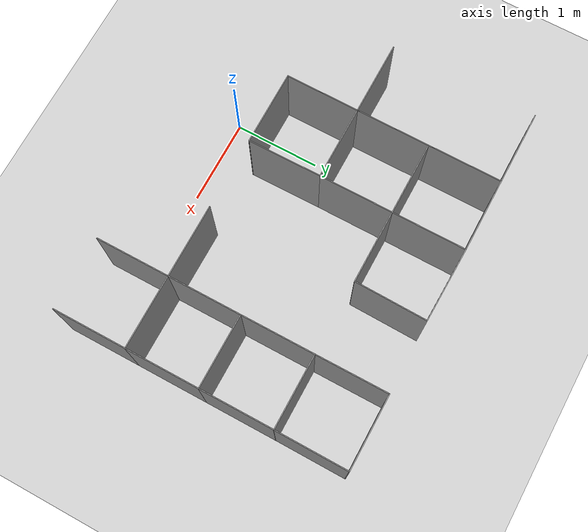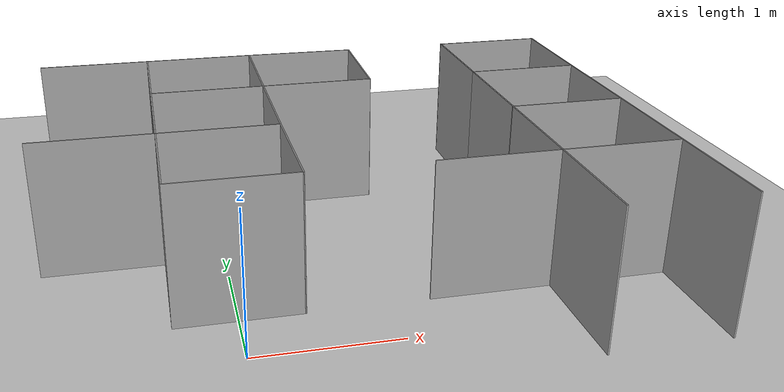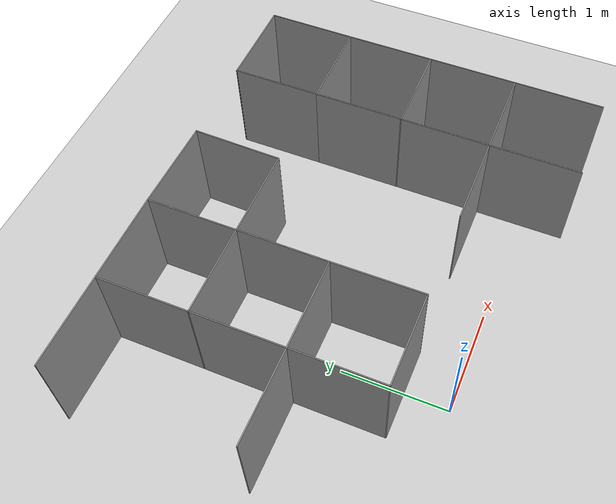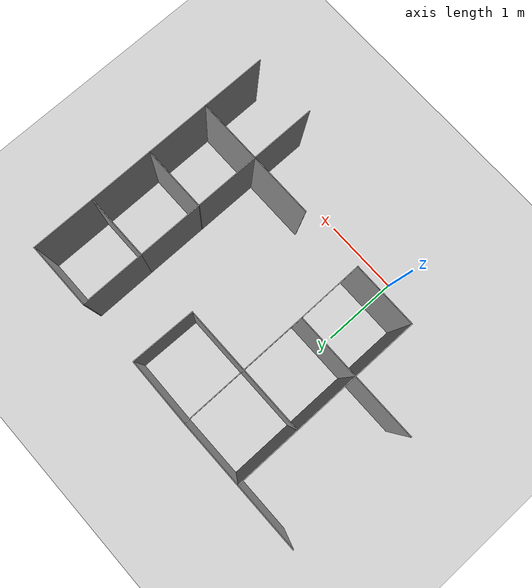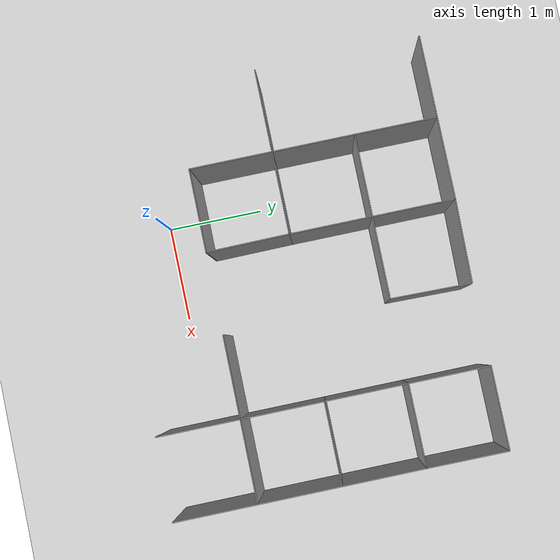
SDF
<sdf version="1.7">
 <world name="default">
  <include><uri>model://sun</uri></include>
  <include><uri>model://ground_plane</uri></include>
  <model name="Lab1">
   <link name="Wall_105">
    <pose>-0.421372 0.849965 0 0 -0 1.5708</pose>
    <visual name="Wall_105_Visual">
     <pose>0 0 0.5 0 -0 0</pose>
     <geometry><box><size>0.859555 0.01 1</size></box></geometry>
     <material>
      <script><uri>file://media/materials/scripts/gazebo.material</uri><name>Gazebo/Grey</name></script>
      <ambient>1 1 1 1</ambient>
      <shader type="pixel"/>
     </material>
     <meta><layer>0</layer></meta>
    </visual>
    <collision name="Wall_105_Collision">
     <pose>0 0 0.5 0 -0 0</pose>
     <geometry><box><size>0.859555 0.01 1</size></box></geometry>
     <surface>
      <friction>
       <ode><mu>1</mu><mu2>1</mu2><fdir1>0 0 0</fdir1><slip1>0</slip1><slip2>0</slip2></ode>
       <torsional>
        <coefficient>1</coefficient>
        <patch_radius>0</patch_radius>
        <surface_radius>0</surface_radius>
        <use_patch_radius>1</use_patch_radius>
        <ode><slip>0</slip></ode>
       </torsional>
      </friction>
      <bounce><restitution_coefficient>0</restitution_coefficient><threshold>1e+06</threshold></bounce>
      <contact>
       <collide_without_contact>0</collide_without_contact>
       <collide_without_contact_bitmask>1</collide_without_contact_bitmask>
       <collide_bitmask>1</collide_bitmask>
       <ode>
        <soft_cfm>0</soft_cfm>
        <soft_erp>0.2</soft_erp>
        <kp>1e+13</kp>
        <kd>1</kd>
        <max_vel>0.01</max_vel>
        <min_depth>0</min_depth>
       </ode>
       <bullet>
        <split_impulse>1</split_impulse>
        <split_impulse_penetration_threshold>-0.01</split_impulse_penetration_threshold>
        <soft_cfm>0</soft_cfm>
        <soft_erp>0.2</soft_erp>
        <kp>1e+13</kp>
        <kd>1</kd>
       </bullet>
      </contact>
     </surface>
    </collision>
   </link>
   <link name="Wall_106">
    <pose>0.003628 1.27496 0 0 -0 0</pose>
    <visual name="Wall_106_Visual">
     <pose>0 0 0.5 0 -0 0</pose>
     <geometry><box><size>0.86 0.01 1</size></box></geometry>
     <material>
      <script><uri>file://media/materials/scripts/gazebo.material</uri><name>Gazebo/Grey</name></script>
      <ambient>1 1 1 1</ambient>
      <shader type="pixel"/>
     </material>
     <meta><layer>0</layer></meta>
    </visual>
    <collision name="Wall_106_Collision">
     <pose>0 0 0.5 0 -0 0</pose>
     <geometry><box><size>0.86 0.01 1</size></box></geometry>
     <surface>
      <friction>
       <ode><mu>1</mu><mu2>1</mu2><fdir1>0 0 0</fdir1><slip1>0</slip1><slip2>0</slip2></ode>
       <torsional>
        <coefficient>1</coefficient>
        <patch_radius>0</patch_radius>
        <surface_radius>0</surface_radius>
        <use_patch_radius>1</use_patch_radius>
        <ode><slip>0</slip></ode>
       </torsional>
      </friction>
      <bounce><restitution_coefficient>0</restitution_coefficient><threshold>1e+06</threshold></bounce>
      <contact>
       <collide_without_contact>0</collide_without_contact>
       <collide_without_contact_bitmask>1</collide_without_contact_bitmask>
       <collide_bitmask>1</collide_bitmask>
       <ode>
        <soft_cfm>0</soft_cfm>
        <soft_erp>0.2</soft_erp>
        <kp>1e+13</kp>
        <kd>1</kd>
        <max_vel>0.01</max_vel>
        <min_depth>0</min_depth>
       </ode>
       <bullet>
        <split_impulse>1</split_impulse>
        <split_impulse_penetration_threshold>-0.01</split_impulse_penetration_threshold>
        <soft_cfm>0</soft_cfm>
        <soft_erp>0.2</soft_erp>
        <kp>1e+13</kp>
        <kd>1</kd>
       </bullet>
      </contact>
     </surface>
    </collision>
   </link>
   <link name="Wall_107">
    <pose>0.432128 0.849965 0 0 0 -1.56256</pose>
    <visual name="Wall_107_Visual">
     <pose>0 0 0.5 0 -0 0</pose>
     <geometry><box><size>0.860029 0.01 1</size></box></geometry>
     <material>
      <script><uri>file://media/materials/scripts/gazebo.material</uri><name>Gazebo/Grey</name></script>
      <ambient>1 1 1 1</ambient>
      <shader type="pixel"/>
     </material>
     <meta><layer>0</layer></meta>
    </visual>
    <collision name="Wall_107_Collision">
     <pose>0 0 0.5 0 -0 0</pose>
     <geometry><box><size>0.860029 0.01 1</size></box></geometry>
     <surface>
      <friction>
       <ode><mu>1</mu><mu2>1</mu2><fdir1>0 0 0</fdir1><slip1>0</slip1><slip2>0</slip2></ode>
       <torsional>
        <coefficient>1</coefficient>
        <patch_radius>0</patch_radius>
        <surface_radius>0</surface_radius>
        <use_patch_radius>1</use_patch_radius>
        <ode><slip>0</slip></ode>
       </torsional>
      </friction>
      <bounce><restitution_coefficient>0</restitution_coefficient><threshold>1e+06</threshold></bounce>
      <contact>
       <collide_without_contact>0</collide_without_contact>
       <collide_without_contact_bitmask>1</collide_without_contact_bitmask>
       <collide_bitmask>1</collide_bitmask>
       <ode>
        <soft_cfm>0</soft_cfm>
        <soft_erp>0.2</soft_erp>
        <kp>1e+13</kp>
        <kd>1</kd>
        <max_vel>0.01</max_vel>
        <min_depth>0</min_depth>
       </ode>
       <bullet>
        <split_impulse>1</split_impulse>
        <split_impulse_penetration_threshold>-0.01</split_impulse_penetration_threshold>
        <soft_cfm>0</soft_cfm>
        <soft_erp>0.2</soft_erp>
        <kp>1e+13</kp>
        <kd>1</kd>
       </bullet>
      </contact>
     </surface>
    </collision>
   </link>
   <link name="Wall_111">
    <pose>2.12863 0.849965 0 0 0 -1.5708</pose>
    <visual name="Wall_111_Visual">
     <pose>0 0 0.5 0 -0 0</pose>
     <geometry><box><size>0.86 0.01 1</size></box></geometry>
     <material>
      <script><uri>file://media/materials/scripts/gazebo.material</uri><name>Gazebo/Grey</name></script>
      <ambient>1 1 1 1</ambient>
      <shader type="pixel"/>
     </material>
     <meta><layer>0</layer></meta>
    </visual>
    <collision name="Wall_111_Collision">
     <pose>0 0 0.5 0 -0 0</pose>
     <geometry><box><size>0.86 0.01 1</size></box></geometry>
     <surface>
      <friction>
       <ode><mu>1</mu><mu2>1</mu2><fdir1>0 0 0</fdir1><slip1>0</slip1><slip2>0</slip2></ode>
       <torsional>
        <coefficient>1</coefficient>
        <patch_radius>0</patch_radius>
        <surface_radius>0</surface_radius>
        <use_patch_radius>1</use_patch_radius>
        <ode><slip>0</slip></ode>
       </torsional>
      </friction>
      <bounce><restitution_coefficient>0</restitution_coefficient><threshold>1e+06</threshold></bounce>
      <contact>
       <collide_without_contact>0</collide_without_contact>
       <collide_without_contact_bitmask>1</collide_without_contact_bitmask>
       <collide_bitmask>1</collide_bitmask>
       <ode>
        <soft_cfm>0</soft_cfm>
        <soft_erp>0.2</soft_erp>
        <kp>1e+13</kp>
        <kd>1</kd>
        <max_vel>0.01</max_vel>
        <min_depth>0</min_depth>
       </ode>
       <bullet>
        <split_impulse>1</split_impulse>
        <split_impulse_penetration_threshold>-0.01</split_impulse_penetration_threshold>
        <soft_cfm>0</soft_cfm>
        <soft_erp>0.2</soft_erp>
        <kp>1e+13</kp>
        <kd>1</kd>
       </bullet>
      </contact>
     </surface>
    </collision>
   </link>
   <link name="Wall_112">
    <pose>2.55363 0.424965 0 0 -0 0</pose>
    <visual name="Wall_112_Visual">
     <pose>0 0 0.5 0 -0 0</pose>
     <geometry><box><size>0.86 0.01 1</size></box></geometry>
     <material>
      <script><uri>file://media/materials/scripts/gazebo.material</uri><name>Gazebo/Grey</name></script>
      <ambient>1 1 1 1</ambient>
      <shader type="pixel"/>
     </material>
     <meta><layer>0</layer></meta>
    </visual>
    <collision name="Wall_112_Collision">
     <pose>0 0 0.5 0 -0 0</pose>
     <geometry><box><size>0.86 0.01 1</size></box></geometry>
     <surface>
      <friction>
       <ode><mu>1</mu><mu2>1</mu2><fdir1>0 0 0</fdir1><slip1>0</slip1><slip2>0</slip2></ode>
       <torsional>
        <coefficient>1</coefficient>
        <patch_radius>0</patch_radius>
        <surface_radius>0</surface_radius>
        <use_patch_radius>1</use_patch_radius>
        <ode><slip>0</slip></ode>
       </torsional>
      </friction>
      <bounce><restitution_coefficient>0</restitution_coefficient><threshold>1e+06</threshold></bounce>
      <contact>
       <collide_without_contact>0</collide_without_contact>
       <collide_without_contact_bitmask>1</collide_without_contact_bitmask>
       <collide_bitmask>1</collide_bitmask>
       <ode>
        <soft_cfm>0</soft_cfm>
        <soft_erp>0.2</soft_erp>
        <kp>1e+13</kp>
        <kd>1</kd>
        <max_vel>0.01</max_vel>
        <min_depth>0</min_depth>
       </ode>
       <bullet>
        <split_impulse>1</split_impulse>
        <split_impulse_penetration_threshold>-0.01</split_impulse_penetration_threshold>
        <soft_cfm>0</soft_cfm>
        <soft_erp>0.2</soft_erp>
        <kp>1e+13</kp>
        <kd>1</kd>
       </bullet>
      </contact>
     </surface>
    </collision>
   </link>
   <link name="Wall_115">
    <pose>2.55363 1.27496 0 0 -0 3.14159</pose>
    <visual name="Wall_115_Visual">
     <pose>0 0 0.5 0 -0 0</pose>
     <geometry><box><size>0.86 0.01 1</size></box></geometry>
     <material>
      <script><uri>file://media/materials/scripts/gazebo.material</uri><name>Gazebo/Grey</name></script>
      <ambient>1 1 1 1</ambient>
      <shader type="pixel"/>
     </material>
     <meta><layer>0</layer></meta>
    </visual>
    <collision name="Wall_115_Collision">
     <pose>0 0 0.5 0 -0 0</pose>
     <geometry><box><size>0.86 0.01 1</size></box></geometry>
     <surface>
      <friction>
       <ode><mu>1</mu><mu2>1</mu2><fdir1>0 0 0</fdir1><slip1>0</slip1><slip2>0</slip2></ode>
       <torsional>
        <coefficient>1</coefficient>
        <patch_radius>0</patch_radius>
        <surface_radius>0</surface_radius>
        <use_patch_radius>1</use_patch_radius>
        <ode><slip>0</slip></ode>
       </torsional>
      </friction>
      <bounce><restitution_coefficient>0</restitution_coefficient><threshold>1e+06</threshold></bounce>
      <contact>
       <collide_without_contact>0</collide_without_contact>
       <collide_without_contact_bitmask>1</collide_without_contact_bitmask>
       <collide_bitmask>1</collide_bitmask>
       <ode>
        <soft_cfm>0</soft_cfm>
        <soft_erp>0.2</soft_erp>
        <kp>1e+13</kp>
        <kd>1</kd>
        <max_vel>0.01</max_vel>
        <min_depth>0</min_depth>
       </ode>
       <bullet>
        <split_impulse>1</split_impulse>
        <split_impulse_penetration_threshold>-0.01</split_impulse_penetration_threshold>
        <soft_cfm>0</soft_cfm>
        <soft_erp>0.2</soft_erp>
        <kp>1e+13</kp>
        <kd>1</kd>
       </bullet>
      </contact>
     </surface>
    </collision>
   </link>
   <link name="Wall_116">
    <pose>2.12863 1.69996 0 0 -0 1.5708</pose>
    <visual name="Wall_116_Visual">
     <pose>0 0 0.5 0 -0 0</pose>
     <geometry><box><size>0.859555 0.01 1</size></box></geometry>
     <material>
      <script><uri>file://media/materials/scripts/gazebo.material</uri><name>Gazebo/Grey</name></script>
      <ambient>1 1 1 1</ambient>
      <shader type="pixel"/>
     </material>
     <meta><layer>0</layer></meta>
    </visual>
    <collision name="Wall_116_Collision">
     <pose>0 0 0.5 0 -0 0</pose>
     <geometry><box><size>0.859555 0.01 1</size></box></geometry>
     <surface>
      <friction>
       <ode><mu>1</mu><mu2>1</mu2><fdir1>0 0 0</fdir1><slip1>0</slip1><slip2>0</slip2></ode>
       <torsional>
        <coefficient>1</coefficient>
        <patch_radius>0</patch_radius>
        <surface_radius>0</surface_radius>
        <use_patch_radius>1</use_patch_radius>
        <ode><slip>0</slip></ode>
       </torsional>
      </friction>
      <bounce><restitution_coefficient>0</restitution_coefficient><threshold>1e+06</threshold></bounce>
      <contact>
       <collide_without_contact>0</collide_without_contact>
       <collide_without_contact_bitmask>1</collide_without_contact_bitmask>
       <collide_bitmask>1</collide_bitmask>
       <ode>
        <soft_cfm>0</soft_cfm>
        <soft_erp>0.2</soft_erp>
        <kp>1e+13</kp>
        <kd>1</kd>
        <max_vel>0.01</max_vel>
        <min_depth>0</min_depth>
       </ode>
       <bullet>
        <split_impulse>1</split_impulse>
        <split_impulse_penetration_threshold>-0.01</split_impulse_penetration_threshold>
        <soft_cfm>0</soft_cfm>
        <soft_erp>0.2</soft_erp>
        <kp>1e+13</kp>
        <kd>1</kd>
       </bullet>
      </contact>
     </surface>
    </collision>
   </link>
   <link name="Wall_120">
    <pose>0.428628 1.69996 0 0 -0 1.5708</pose>
    <visual name="Wall_120_Visual">
     <pose>0 0 0.5 0 -0 0</pose>
     <geometry><box><size>0.859555 0.01 1</size></box></geometry>
     <material>
      <script><uri>file://media/materials/scripts/gazebo.material</uri><name>Gazebo/Grey</name></script>
      <ambient>1 1 1 1</ambient>
      <shader type="pixel"/>
     </material>
     <meta><layer>0</layer></meta>
    </visual>
    <collision name="Wall_120_Collision">
     <pose>0 0 0.5 0 -0 0</pose>
     <geometry><box><size>0.859555 0.01 1</size></box></geometry>
     <surface>
      <friction>
       <ode><mu>1</mu><mu2>1</mu2><fdir1>0 0 0</fdir1><slip1>0</slip1><slip2>0</slip2></ode>
       <torsional>
        <coefficient>1</coefficient>
        <patch_radius>0</patch_radius>
        <surface_radius>0</surface_radius>
        <use_patch_radius>1</use_patch_radius>
        <ode><slip>0</slip></ode>
       </torsional>
      </friction>
      <bounce><restitution_coefficient>0</restitution_coefficient><threshold>1e+06</threshold></bounce>
      <contact>
       <collide_without_contact>0</collide_without_contact>
       <collide_without_contact_bitmask>1</collide_without_contact_bitmask>
       <collide_bitmask>1</collide_bitmask>
       <ode>
        <soft_cfm>0</soft_cfm>
        <soft_erp>0.2</soft_erp>
        <kp>1e+13</kp>
        <kd>1</kd>
        <max_vel>0.01</max_vel>
        <min_depth>0</min_depth>
       </ode>
       <bullet>
        <split_impulse>1</split_impulse>
        <split_impulse_penetration_threshold>-0.01</split_impulse_penetration_threshold>
        <soft_cfm>0</soft_cfm>
        <soft_erp>0.2</soft_erp>
        <kp>1e+13</kp>
        <kd>1</kd>
       </bullet>
      </contact>
     </surface>
    </collision>
   </link>
   <link name="Wall_121">
    <pose>0.003628 2.12496 0 0 -0 3.14159</pose>
    <visual name="Wall_121_Visual">
     <pose>0 0 0.5 0 -0 0</pose>
     <geometry><box><size>0.86 0.01 1</size></box></geometry>
     <material>
      <script><uri>file://media/materials/scripts/gazebo.material</uri><name>Gazebo/Grey</name></script>
      <ambient>1 1 1 1</ambient>
      <shader type="pixel"/>
     </material>
     <meta><layer>0</layer></meta>
    </visual>
    <collision name="Wall_121_Collision">
     <pose>0 0 0.5 0 -0 0</pose>
     <geometry><box><size>0.86 0.01 1</size></box></geometry>
     <surface>
      <friction>
       <ode><mu>1</mu><mu2>1</mu2><fdir1>0 0 0</fdir1><slip1>0</slip1><slip2>0</slip2></ode>
       <torsional>
        <coefficient>1</coefficient>
        <patch_radius>0</patch_radius>
        <surface_radius>0</surface_radius>
        <use_patch_radius>1</use_patch_radius>
        <ode><slip>0</slip></ode>
       </torsional>
      </friction>
      <bounce><restitution_coefficient>0</restitution_coefficient><threshold>1e+06</threshold></bounce>
      <contact>
       <collide_without_contact>0</collide_without_contact>
       <collide_without_contact_bitmask>1</collide_without_contact_bitmask>
       <collide_bitmask>1</collide_bitmask>
       <ode>
        <soft_cfm>0</soft_cfm>
        <soft_erp>0.2</soft_erp>
        <kp>1e+13</kp>
        <kd>1</kd>
        <max_vel>0.01</max_vel>
        <min_depth>0</min_depth>
       </ode>
       <bullet>
        <split_impulse>1</split_impulse>
        <split_impulse_penetration_threshold>-0.01</split_impulse_penetration_threshold>
        <soft_cfm>0</soft_cfm>
        <soft_erp>0.2</soft_erp>
        <kp>1e+13</kp>
        <kd>1</kd>
       </bullet>
      </contact>
     </surface>
    </collision>
   </link>
   <link name="Wall_122">
    <pose>-0.421372 1.69996 0 0 0 -1.5708</pose>
    <visual name="Wall_122_Visual">
     <pose>0 0 0.5 0 -0 0</pose>
     <geometry><box><size>0.86 0.01 1</size></box></geometry>
     <material>
      <script><uri>file://media/materials/scripts/gazebo.material</uri><name>Gazebo/Grey</name></script>
      <ambient>1 1 1 1</ambient>
      <shader type="pixel"/>
     </material>
     <meta><layer>0</layer></meta>
    </visual>
    <collision name="Wall_122_Collision">
     <pose>0 0 0.5 0 -0 0</pose>
     <geometry><box><size>0.86 0.01 1</size></box></geometry>
     <surface>
      <friction>
       <ode><mu>1</mu><mu2>1</mu2><fdir1>0 0 0</fdir1><slip1>0</slip1><slip2>0</slip2></ode>
       <torsional>
        <coefficient>1</coefficient>
        <patch_radius>0</patch_radius>
        <surface_radius>0</surface_radius>
        <use_patch_radius>1</use_patch_radius>
        <ode><slip>0</slip></ode>
       </torsional>
      </friction>
      <bounce><restitution_coefficient>0</restitution_coefficient><threshold>1e+06</threshold></bounce>
      <contact>
       <collide_without_contact>0</collide_without_contact>
       <collide_without_contact_bitmask>1</collide_without_contact_bitmask>
       <collide_bitmask>1</collide_bitmask>
       <ode>
        <soft_cfm>0</soft_cfm>
        <soft_erp>0.2</soft_erp>
        <kp>1e+13</kp>
        <kd>1</kd>
        <max_vel>0.01</max_vel>
        <min_depth>0</min_depth>
       </ode>
       <bullet>
        <split_impulse>1</split_impulse>
        <split_impulse_penetration_threshold>-0.01</split_impulse_penetration_threshold>
        <soft_cfm>0</soft_cfm>
        <soft_erp>0.2</soft_erp>
        <kp>1e+13</kp>
        <kd>1</kd>
       </bullet>
      </contact>
     </surface>
    </collision>
   </link>
   <link name="Wall_123">
    <pose>-0.846372 1.27496 0 0 -0 3.14159</pose>
    <visual name="Wall_123_Visual">
     <pose>0 0 0.5 0 -0 0</pose>
     <geometry><box><size>0.86 0.01 1</size></box></geometry>
     <material>
      <script><uri>file://media/materials/scripts/gazebo.material</uri><name>Gazebo/Grey</name></script>
      <ambient>1 1 1 1</ambient>
      <shader type="pixel"/>
     </material>
     <meta><layer>0</layer></meta>
    </visual>
    <collision name="Wall_123_Collision">
     <pose>0 0 0.5 0 -0 0</pose>
     <geometry><box><size>0.86 0.01 1</size></box></geometry>
     <surface>
      <friction>
       <ode><mu>1</mu><mu2>1</mu2><fdir1>0 0 0</fdir1><slip1>0</slip1><slip2>0</slip2></ode>
       <torsional>
        <coefficient>1</coefficient>
        <patch_radius>0</patch_radius>
        <surface_radius>0</surface_radius>
        <use_patch_radius>1</use_patch_radius>
        <ode><slip>0</slip></ode>
       </torsional>
      </friction>
      <bounce><restitution_coefficient>0</restitution_coefficient><threshold>1e+06</threshold></bounce>
      <contact>
       <collide_without_contact>0</collide_without_contact>
       <collide_without_contact_bitmask>1</collide_without_contact_bitmask>
       <collide_bitmask>1</collide_bitmask>
       <ode>
        <soft_cfm>0</soft_cfm>
        <soft_erp>0.2</soft_erp>
        <kp>1e+13</kp>
        <kd>1</kd>
        <max_vel>0.01</max_vel>
        <min_depth>0</min_depth>
       </ode>
       <bullet>
        <split_impulse>1</split_impulse>
        <split_impulse_penetration_threshold>-0.01</split_impulse_penetration_threshold>
        <soft_cfm>0</soft_cfm>
        <soft_erp>0.2</soft_erp>
        <kp>1e+13</kp>
        <kd>1</kd>
       </bullet>
      </contact>
     </surface>
    </collision>
   </link>
   <link name="Wall_134">
    <pose>-0.421372 2.54996 0 0 -0 1.5708</pose>
    <visual name="Wall_134_Visual">
     <pose>0 0 0.5 0 -0 0</pose>
     <geometry><box><size>0.86 0.01 1</size></box></geometry>
     <material>
      <script><uri>file://media/materials/scripts/gazebo.material</uri><name>Gazebo/Grey</name></script>
      <ambient>1 1 1 1</ambient>
      <shader type="pixel"/>
     </material>
     <meta><layer>0</layer></meta>
    </visual>
    <collision name="Wall_134_Collision">
     <pose>0 0 0.5 0 -0 0</pose>
     <geometry><box><size>0.86 0.01 1</size></box></geometry>
     <surface>
      <friction>
       <ode><mu>1</mu><mu2>1</mu2><fdir1>0 0 0</fdir1><slip1>0</slip1><slip2>0</slip2></ode>
       <torsional>
        <coefficient>1</coefficient>
        <patch_radius>0</patch_radius>
        <surface_radius>0</surface_radius>
        <use_patch_radius>1</use_patch_radius>
        <ode><slip>0</slip></ode>
       </torsional>
      </friction>
      <bounce><restitution_coefficient>0</restitution_coefficient><threshold>1e+06</threshold></bounce>
      <contact>
       <collide_without_contact>0</collide_without_contact>
       <collide_without_contact_bitmask>1</collide_without_contact_bitmask>
       <collide_bitmask>1</collide_bitmask>
       <ode>
        <soft_cfm>0</soft_cfm>
        <soft_erp>0.2</soft_erp>
        <kp>1e+13</kp>
        <kd>1</kd>
        <max_vel>0.01</max_vel>
        <min_depth>0</min_depth>
       </ode>
       <bullet>
        <split_impulse>1</split_impulse>
        <split_impulse_penetration_threshold>-0.01</split_impulse_penetration_threshold>
        <soft_cfm>0</soft_cfm>
        <soft_erp>0.2</soft_erp>
        <kp>1e+13</kp>
        <kd>1</kd>
       </bullet>
      </contact>
     </surface>
    </collision>
   </link>
   <link name="Wall_136">
    <pose>0.428628 2.54996 0 0 0 -1.5708</pose>
    <visual name="Wall_136_Visual">
     <pose>0 0 0.5 0 -0 0</pose>
     <geometry><box><size>0.86 0.01 1</size></box></geometry>
     <material>
      <script><uri>file://media/materials/scripts/gazebo.material</uri><name>Gazebo/Grey</name></script>
      <ambient>1 1 1 1</ambient>
      <shader type="pixel"/>
     </material>
     <meta><layer>0</layer></meta>
    </visual>
    <collision name="Wall_136_Collision">
     <pose>0 0 0.5 0 -0 0</pose>
     <geometry><box><size>0.86 0.01 1</size></box></geometry>
     <surface>
      <friction>
       <ode><mu>1</mu><mu2>1</mu2><fdir1>0 0 0</fdir1><slip1>0</slip1><slip2>0</slip2></ode>
       <torsional>
        <coefficient>1</coefficient>
        <patch_radius>0</patch_radius>
        <surface_radius>0</surface_radius>
        <use_patch_radius>1</use_patch_radius>
        <ode><slip>0</slip></ode>
       </torsional>
      </friction>
      <bounce><restitution_coefficient>0</restitution_coefficient><threshold>1e+06</threshold></bounce>
      <contact>
       <collide_without_contact>0</collide_without_contact>
       <collide_without_contact_bitmask>1</collide_without_contact_bitmask>
       <collide_bitmask>1</collide_bitmask>
       <ode>
        <soft_cfm>0</soft_cfm>
        <soft_erp>0.2</soft_erp>
        <kp>1e+13</kp>
        <kd>1</kd>
        <max_vel>0.01</max_vel>
        <min_depth>0</min_depth>
       </ode>
       <bullet>
        <split_impulse>1</split_impulse>
        <split_impulse_penetration_threshold>-0.01</split_impulse_penetration_threshold>
        <soft_cfm>0</soft_cfm>
        <soft_erp>0.2</soft_erp>
        <kp>1e+13</kp>
        <kd>1</kd>
       </bullet>
      </contact>
     </surface>
    </collision>
   </link>
   <link name="Wall_137">
    <pose>0.850196 2.12496 0 0 -0 0</pose>
    <visual name="Wall_137_Visual">
     <pose>0 0 0.5 0 -0 0</pose>
     <geometry><box><size>0.853136 0.01 1</size></box></geometry>
     <material>
      <script><uri>file://media/materials/scripts/gazebo.material</uri><name>Gazebo/Grey</name></script>
      <ambient>1 1 1 1</ambient>
      <shader type="pixel"/>
     </material>
     <meta><layer>0</layer></meta>
    </visual>
    <collision name="Wall_137_Collision">
     <pose>0 0 0.5 0 -0 0</pose>
     <geometry><box><size>0.853136 0.01 1</size></box></geometry>
     <surface>
      <friction>
       <ode><mu>1</mu><mu2>1</mu2><fdir1>0 0 0</fdir1><slip1>0</slip1><slip2>0</slip2></ode>
       <torsional>
        <coefficient>1</coefficient>
        <patch_radius>0</patch_radius>
        <surface_radius>0</surface_radius>
        <use_patch_radius>1</use_patch_radius>
        <ode><slip>0</slip></ode>
       </torsional>
      </friction>
      <bounce><restitution_coefficient>0</restitution_coefficient><threshold>1e+06</threshold></bounce>
      <contact>
       <collide_without_contact>0</collide_without_contact>
       <collide_without_contact_bitmask>1</collide_without_contact_bitmask>
       <collide_bitmask>1</collide_bitmask>
       <ode>
        <soft_cfm>0</soft_cfm>
        <soft_erp>0.2</soft_erp>
        <kp>1e+13</kp>
        <kd>1</kd>
        <max_vel>0.01</max_vel>
        <min_depth>0</min_depth>
       </ode>
       <bullet>
        <split_impulse>1</split_impulse>
        <split_impulse_penetration_threshold>-0.01</split_impulse_penetration_threshold>
        <soft_cfm>0</soft_cfm>
        <soft_erp>0.2</soft_erp>
        <kp>1e+13</kp>
        <kd>1</kd>
       </bullet>
      </contact>
     </surface>
    </collision>
   </link>
   <link name="Wall_138">
    <pose>1.2802 2.54147 0 0 -0 1.55055</pose>
    <visual name="Wall_138_Visual">
     <pose>0 0 0.5 0 -0 0</pose>
     <geometry><box><size>0.84306 0.01 1</size></box></geometry>
     <material>
      <script><uri>file://media/materials/scripts/gazebo.material</uri><name>Gazebo/Grey</name></script>
      <ambient>1 1 1 1</ambient>
      <shader type="pixel"/>
     </material>
     <meta><layer>0</layer></meta>
    </visual>
    <collision name="Wall_138_Collision">
     <pose>0 0 0.5 0 -0 0</pose>
     <geometry><box><size>0.84306 0.01 1</size></box></geometry>
     <surface>
      <friction>
       <ode><mu>1</mu><mu2>1</mu2><fdir1>0 0 0</fdir1><slip1>0</slip1><slip2>0</slip2></ode>
       <torsional>
        <coefficient>1</coefficient>
        <patch_radius>0</patch_radius>
        <surface_radius>0</surface_radius>
        <use_patch_radius>1</use_patch_radius>
        <ode><slip>0</slip></ode>
       </torsional>
      </friction>
      <bounce><restitution_coefficient>0</restitution_coefficient><threshold>1e+06</threshold></bounce>
      <contact>
       <collide_without_contact>0</collide_without_contact>
       <collide_without_contact_bitmask>1</collide_without_contact_bitmask>
       <collide_bitmask>1</collide_bitmask>
       <ode>
        <soft_cfm>0</soft_cfm>
        <soft_erp>0.2</soft_erp>
        <kp>1e+13</kp>
        <kd>1</kd>
        <max_vel>0.01</max_vel>
        <min_depth>0</min_depth>
       </ode>
       <bullet>
        <split_impulse>1</split_impulse>
        <split_impulse_penetration_threshold>-0.01</split_impulse_penetration_threshold>
        <soft_cfm>0</soft_cfm>
        <soft_erp>0.2</soft_erp>
        <kp>1e+13</kp>
        <kd>1</kd>
       </bullet>
      </contact>
     </surface>
    </collision>
   </link>
   <link name="Wall_140">
    <pose>2.12813 2.54346 0 0 0 -1.5696</pose>
    <visual name="Wall_140_Visual">
     <pose>0 0 0.5 0 -0 0</pose>
     <geometry><box><size>0.847001 0.01 1</size></box></geometry>
     <material>
      <script><uri>file://media/materials/scripts/gazebo.material</uri><name>Gazebo/Grey</name></script>
      <ambient>1 1 1 1</ambient>
      <shader type="pixel"/>
     </material>
     <meta><layer>0</layer></meta>
    </visual>
    <collision name="Wall_140_Collision">
     <pose>0 0 0.5 0 -0 0</pose>
     <geometry><box><size>0.847001 0.01 1</size></box></geometry>
     <surface>
      <friction>
       <ode><mu>1</mu><mu2>1</mu2><fdir1>0 0 0</fdir1><slip1>0</slip1><slip2>0</slip2></ode>
       <torsional>
        <coefficient>1</coefficient>
        <patch_radius>0</patch_radius>
        <surface_radius>0</surface_radius>
        <use_patch_radius>1</use_patch_radius>
        <ode><slip>0</slip></ode>
       </torsional>
      </friction>
      <bounce><restitution_coefficient>0</restitution_coefficient><threshold>1e+06</threshold></bounce>
      <contact>
       <collide_without_contact>0</collide_without_contact>
       <collide_without_contact_bitmask>1</collide_without_contact_bitmask>
       <collide_bitmask>1</collide_bitmask>
       <ode>
        <soft_cfm>0</soft_cfm>
        <soft_erp>0.2</soft_erp>
        <kp>1e+13</kp>
        <kd>1</kd>
        <max_vel>0.01</max_vel>
        <min_depth>0</min_depth>
       </ode>
       <bullet>
        <split_impulse>1</split_impulse>
        <split_impulse_penetration_threshold>-0.01</split_impulse_penetration_threshold>
        <soft_cfm>0</soft_cfm>
        <soft_erp>0.2</soft_erp>
        <kp>1e+13</kp>
        <kd>1</kd>
       </bullet>
      </contact>
     </surface>
    </collision>
   </link>
   <link name="Wall_141">
    <pose>2.55363 2.12496 0 0 -0 0</pose>
    <visual name="Wall_141_Visual">
     <pose>0 0 0.5 0 -0 0</pose>
     <geometry><box><size>0.86 0.01 1</size></box></geometry>
     <material>
      <script><uri>file://media/materials/scripts/gazebo.material</uri><name>Gazebo/Grey</name></script>
      <ambient>1 1 1 1</ambient>
      <shader type="pixel"/>
     </material>
     <meta><layer>0</layer></meta>
    </visual>
    <collision name="Wall_141_Collision">
     <pose>0 0 0.5 0 -0 0</pose>
     <geometry><box><size>0.86 0.01 1</size></box></geometry>
     <surface>
      <friction>
       <ode><mu>1</mu><mu2>1</mu2><fdir1>0 0 0</fdir1><slip1>0</slip1><slip2>0</slip2></ode>
       <torsional>
        <coefficient>1</coefficient>
        <patch_radius>0</patch_radius>
        <surface_radius>0</surface_radius>
        <use_patch_radius>1</use_patch_radius>
        <ode><slip>0</slip></ode>
       </torsional>
      </friction>
      <bounce><restitution_coefficient>0</restitution_coefficient><threshold>1e+06</threshold></bounce>
      <contact>
       <collide_without_contact>0</collide_without_contact>
       <collide_without_contact_bitmask>1</collide_without_contact_bitmask>
       <collide_bitmask>1</collide_bitmask>
       <ode>
        <soft_cfm>0</soft_cfm>
        <soft_erp>0.2</soft_erp>
        <kp>1e+13</kp>
        <kd>1</kd>
        <max_vel>0.01</max_vel>
        <min_depth>0</min_depth>
       </ode>
       <bullet>
        <split_impulse>1</split_impulse>
        <split_impulse_penetration_threshold>-0.01</split_impulse_penetration_threshold>
        <soft_cfm>0</soft_cfm>
        <soft_erp>0.2</soft_erp>
        <kp>1e+13</kp>
        <kd>1</kd>
       </bullet>
      </contact>
     </surface>
    </collision>
   </link>
   <link name="Wall_142">
    <pose>2.98063 2.54346 0 0 -0 1.56602</pose>
    <visual name="Wall_142_Visual">
     <pose>0 0 0.5 0 -0 0</pose>
     <geometry><box><size>0.84701 0.01 1</size></box></geometry>
     <material>
      <script><uri>file://media/materials/scripts/gazebo.material</uri><name>Gazebo/Grey</name></script>
      <ambient>1 1 1 1</ambient>
      <shader type="pixel"/>
     </material>
     <meta><layer>0</layer></meta>
    </visual>
    <collision name="Wall_142_Collision">
     <pose>0 0 0.5 0 -0 0</pose>
     <geometry><box><size>0.84701 0.01 1</size></box></geometry>
     <surface>
      <friction>
       <ode><mu>1</mu><mu2>1</mu2><fdir1>0 0 0</fdir1><slip1>0</slip1><slip2>0</slip2></ode>
       <torsional>
        <coefficient>1</coefficient>
        <patch_radius>0</patch_radius>
        <surface_radius>0</surface_radius>
        <use_patch_radius>1</use_patch_radius>
        <ode><slip>0</slip></ode>
       </torsional>
      </friction>
      <bounce><restitution_coefficient>0</restitution_coefficient><threshold>1e+06</threshold></bounce>
      <contact>
       <collide_without_contact>0</collide_without_contact>
       <collide_without_contact_bitmask>1</collide_without_contact_bitmask>
       <collide_bitmask>1</collide_bitmask>
       <ode>
        <soft_cfm>0</soft_cfm>
        <soft_erp>0.2</soft_erp>
        <kp>1e+13</kp>
        <kd>1</kd>
        <max_vel>0.01</max_vel>
        <min_depth>0</min_depth>
       </ode>
       <bullet>
        <split_impulse>1</split_impulse>
        <split_impulse_penetration_threshold>-0.01</split_impulse_penetration_threshold>
        <soft_cfm>0</soft_cfm>
        <soft_erp>0.2</soft_erp>
        <kp>1e+13</kp>
        <kd>1</kd>
       </bullet>
      </contact>
     </surface>
    </collision>
   </link>
   <link name="Wall_143">
    <pose>2.55513 2.96197 0 0 -0 3.14159</pose>
    <visual name="Wall_143_Visual">
     <pose>0 0 0.5 0 -0 0</pose>
     <geometry><box><size>0.865 0.01 1</size></box></geometry>
     <material>
      <script><uri>file://media/materials/scripts/gazebo.material</uri><name>Gazebo/Grey</name></script>
      <ambient>1 1 1 1</ambient>
      <shader type="pixel"/>
     </material>
     <meta><layer>0</layer></meta>
    </visual>
    <collision name="Wall_143_Collision">
     <pose>0 0 0.5 0 -0 0</pose>
     <geometry><box><size>0.865 0.01 1</size></box></geometry>
     <surface>
      <friction>
       <ode><mu>1</mu><mu2>1</mu2><fdir1>0 0 0</fdir1><slip1>0</slip1><slip2>0</slip2></ode>
       <torsional>
        <coefficient>1</coefficient>
        <patch_radius>0</patch_radius>
        <surface_radius>0</surface_radius>
        <use_patch_radius>1</use_patch_radius>
        <ode><slip>0</slip></ode>
       </torsional>
      </friction>
      <bounce><restitution_coefficient>0</restitution_coefficient><threshold>1e+06</threshold></bounce>
      <contact>
       <collide_without_contact>0</collide_without_contact>
       <collide_without_contact_bitmask>1</collide_without_contact_bitmask>
       <collide_bitmask>1</collide_bitmask>
       <ode>
        <soft_cfm>0</soft_cfm>
        <soft_erp>0.2</soft_erp>
        <kp>1e+13</kp>
        <kd>1</kd>
        <max_vel>0.01</max_vel>
        <min_depth>0</min_depth>
       </ode>
       <bullet>
        <split_impulse>1</split_impulse>
        <split_impulse_penetration_threshold>-0.01</split_impulse_penetration_threshold>
        <soft_cfm>0</soft_cfm>
        <soft_erp>0.2</soft_erp>
        <kp>1e+13</kp>
        <kd>1</kd>
       </bullet>
      </contact>
     </surface>
    </collision>
   </link>
   <link name="Wall_145">
    <pose>0.858628 2.96646 0 0 -0 3.12183</pose>
    <visual name="Wall_145_Visual">
     <pose>0 0 0.5 0 -0 0</pose>
     <geometry><box><size>0.870168 0.01 1</size></box></geometry>
     <material>
      <script><uri>file://media/materials/scripts/gazebo.material</uri><name>Gazebo/Grey</name></script>
      <ambient>1 1 1 1</ambient>
      <shader type="pixel"/>
     </material>
     <meta><layer>0</layer></meta>
    </visual>
    <collision name="Wall_145_Collision">
     <pose>0 0 0.5 0 -0 0</pose>
     <geometry><box><size>0.870168 0.01 1</size></box></geometry>
     <surface>
      <friction>
       <ode><mu>1</mu><mu2>1</mu2><fdir1>0 0 0</fdir1><slip1>0</slip1><slip2>0</slip2></ode>
       <torsional>
        <coefficient>1</coefficient>
        <patch_radius>0</patch_radius>
        <surface_radius>0</surface_radius>
        <use_patch_radius>1</use_patch_radius>
        <ode><slip>0</slip></ode>
       </torsional>
      </friction>
      <bounce><restitution_coefficient>0</restitution_coefficient><threshold>1e+06</threshold></bounce>
      <contact>
       <collide_without_contact>0</collide_without_contact>
       <collide_without_contact_bitmask>1</collide_without_contact_bitmask>
       <collide_bitmask>1</collide_bitmask>
       <ode>
        <soft_cfm>0</soft_cfm>
        <soft_erp>0.2</soft_erp>
        <kp>1e+13</kp>
        <kd>1</kd>
        <max_vel>0.01</max_vel>
        <min_depth>0</min_depth>
       </ode>
       <bullet>
        <split_impulse>1</split_impulse>
        <split_impulse_penetration_threshold>-0.01</split_impulse_penetration_threshold>
        <soft_cfm>0</soft_cfm>
        <soft_erp>0.2</soft_erp>
        <kp>1e+13</kp>
        <kd>1</kd>
       </bullet>
      </contact>
     </surface>
    </collision>
   </link>
   <link name="Wall_146">
    <pose>0.003628 2.97497 0 0 -0 3.14159</pose>
    <visual name="Wall_146_Visual">
     <pose>0 0 0.5 0 -0 0</pose>
     <geometry><box><size>0.86 0.01 1</size></box></geometry>
     <material>
      <script><uri>file://media/materials/scripts/gazebo.material</uri><name>Gazebo/Grey</name></script>
      <ambient>1 1 1 1</ambient>
      <shader type="pixel"/>
     </material>
     <meta><layer>0</layer></meta>
    </visual>
    <collision name="Wall_146_Collision">
     <pose>0 0 0.5 0 -0 0</pose>
     <geometry><box><size>0.86 0.01 1</size></box></geometry>
     <surface>
      <friction>
       <ode><mu>1</mu><mu2>1</mu2><fdir1>0 0 0</fdir1><slip1>0</slip1><slip2>0</slip2></ode>
       <torsional>
        <coefficient>1</coefficient>
        <patch_radius>0</patch_radius>
        <surface_radius>0</surface_radius>
        <use_patch_radius>1</use_patch_radius>
        <ode><slip>0</slip></ode>
       </torsional>
      </friction>
      <bounce><restitution_coefficient>0</restitution_coefficient><threshold>1e+06</threshold></bounce>
      <contact>
       <collide_without_contact>0</collide_without_contact>
       <collide_without_contact_bitmask>1</collide_without_contact_bitmask>
       <collide_bitmask>1</collide_bitmask>
       <ode>
        <soft_cfm>0</soft_cfm>
        <soft_erp>0.2</soft_erp>
        <kp>1e+13</kp>
        <kd>1</kd>
        <max_vel>0.01</max_vel>
        <min_depth>0</min_depth>
       </ode>
       <bullet>
        <split_impulse>1</split_impulse>
        <split_impulse_penetration_threshold>-0.01</split_impulse_penetration_threshold>
        <soft_cfm>0</soft_cfm>
        <soft_erp>0.2</soft_erp>
        <kp>1e+13</kp>
        <kd>1</kd>
       </bullet>
      </contact>
     </surface>
    </collision>
   </link>
   <link name="Wall_147">
    <pose>-0.846372 2.97497 0 0 -0 3.14159</pose>
    <visual name="Wall_147_Visual">
     <pose>0 0 0.5 0 -0 0</pose>
     <geometry><box><size>0.86 0.01 1</size></box></geometry>
     <material>
      <script><uri>file://media/materials/scripts/gazebo.material</uri><name>Gazebo/Grey</name></script>
      <ambient>1 1 1 1</ambient>
      <shader type="pixel"/>
     </material>
     <meta><layer>0</layer></meta>
    </visual>
    <collision name="Wall_147_Collision">
     <pose>0 0 0.5 0 -0 0</pose>
     <geometry><box><size>0.86 0.01 1</size></box></geometry>
     <surface>
      <friction>
       <ode><mu>1</mu><mu2>1</mu2><fdir1>0 0 0</fdir1><slip1>0</slip1><slip2>0</slip2></ode>
       <torsional>
        <coefficient>1</coefficient>
        <patch_radius>0</patch_radius>
        <surface_radius>0</surface_radius>
        <use_patch_radius>1</use_patch_radius>
        <ode><slip>0</slip></ode>
       </torsional>
      </friction>
      <bounce><restitution_coefficient>0</restitution_coefficient><threshold>1e+06</threshold></bounce>
      <contact>
       <collide_without_contact>0</collide_without_contact>
       <collide_without_contact_bitmask>1</collide_without_contact_bitmask>
       <collide_bitmask>1</collide_bitmask>
       <ode>
        <soft_cfm>0</soft_cfm>
        <soft_erp>0.2</soft_erp>
        <kp>1e+13</kp>
        <kd>1</kd>
        <max_vel>0.01</max_vel>
        <min_depth>0</min_depth>
       </ode>
       <bullet>
        <split_impulse>1</split_impulse>
        <split_impulse_penetration_threshold>-0.01</split_impulse_penetration_threshold>
        <soft_cfm>0</soft_cfm>
        <soft_erp>0.2</soft_erp>
        <kp>1e+13</kp>
        <kd>1</kd>
       </bullet>
      </contact>
     </surface>
    </collision>
   </link>
   <link name="Wall_167">
    <pose>2.97863 -3.5e-05 0 0 -0 1.5708</pose>
    <visual name="Wall_167_Visual">
     <pose>0 0 0.5 0 -0 0</pose>
     <geometry><box><size>0.859555 0.01 1</size></box></geometry>
     <material>
      <script><uri>file://media/materials/scripts/gazebo.material</uri><name>Gazebo/Grey</name></script>
      <ambient>1 1 1 1</ambient>
      <shader type="pixel"/>
     </material>
     <meta><layer>0</layer></meta>
    </visual>
    <collision name="Wall_167_Collision">
     <pose>0 0 0.5 0 -0 0</pose>
     <geometry><box><size>0.859555 0.01 1</size></box></geometry>
     <surface>
      <friction>
       <ode><mu>1</mu><mu2>1</mu2><fdir1>0 0 0</fdir1><slip1>0</slip1><slip2>0</slip2></ode>
       <torsional>
        <coefficient>1</coefficient>
        <patch_radius>0</patch_radius>
        <surface_radius>0</surface_radius>
        <use_patch_radius>1</use_patch_radius>
        <ode><slip>0</slip></ode>
       </torsional>
      </friction>
      <bounce><restitution_coefficient>0</restitution_coefficient><threshold>1e+06</threshold></bounce>
      <contact>
       <collide_without_contact>0</collide_without_contact>
       <collide_without_contact_bitmask>1</collide_without_contact_bitmask>
       <collide_bitmask>1</collide_bitmask>
       <ode>
        <soft_cfm>0</soft_cfm>
        <soft_erp>0.2</soft_erp>
        <kp>1e+13</kp>
        <kd>1</kd>
        <max_vel>0.01</max_vel>
        <min_depth>0</min_depth>
       </ode>
       <bullet>
        <split_impulse>1</split_impulse>
        <split_impulse_penetration_threshold>-0.01</split_impulse_penetration_threshold>
        <soft_cfm>0</soft_cfm>
        <soft_erp>0.2</soft_erp>
        <kp>1e+13</kp>
        <kd>1</kd>
       </bullet>
      </contact>
     </surface>
    </collision>
   </link>
   <link name="Wall_168">
    <pose>2.97863 0.849965 0 0 -0 1.5708</pose>
    <visual name="Wall_168_Visual">
     <pose>0 0 0.5 0 -0 0</pose>
     <geometry><box><size>0.859555 0.01 1</size></box></geometry>
     <material>
      <script><uri>file://media/materials/scripts/gazebo.material</uri><name>Gazebo/Grey</name></script>
      <ambient>1 1 1 1</ambient>
      <shader type="pixel"/>
     </material>
     <meta><layer>0</layer></meta>
    </visual>
    <collision name="Wall_168_Collision">
     <pose>0 0 0.5 0 -0 0</pose>
     <geometry><box><size>0.859555 0.01 1</size></box></geometry>
     <surface>
      <friction>
       <ode><mu>1</mu><mu2>1</mu2><fdir1>0 0 0</fdir1><slip1>0</slip1><slip2>0</slip2></ode>
       <torsional>
        <coefficient>1</coefficient>
        <patch_radius>0</patch_radius>
        <surface_radius>0</surface_radius>
        <use_patch_radius>1</use_patch_radius>
        <ode><slip>0</slip></ode>
       </torsional>
      </friction>
      <bounce><restitution_coefficient>0</restitution_coefficient><threshold>1e+06</threshold></bounce>
      <contact>
       <collide_without_contact>0</collide_without_contact>
       <collide_without_contact_bitmask>1</collide_without_contact_bitmask>
       <collide_bitmask>1</collide_bitmask>
       <ode>
        <soft_cfm>0</soft_cfm>
        <soft_erp>0.2</soft_erp>
        <kp>1e+13</kp>
        <kd>1</kd>
        <max_vel>0.01</max_vel>
        <min_depth>0</min_depth>
       </ode>
       <bullet>
        <split_impulse>1</split_impulse>
        <split_impulse_penetration_threshold>-0.01</split_impulse_penetration_threshold>
        <soft_cfm>0</soft_cfm>
        <soft_erp>0.2</soft_erp>
        <kp>1e+13</kp>
        <kd>1</kd>
       </bullet>
      </contact>
     </surface>
    </collision>
   </link>
   <link name="Wall_169">
    <pose>2.97863 1.69996 0 0 -0 1.5708</pose>
    <visual name="Wall_169_Visual">
     <pose>0 0 0.5 0 -0 0</pose>
     <geometry><box><size>0.859555 0.01 1</size></box></geometry>
     <material>
      <script><uri>file://media/materials/scripts/gazebo.material</uri><name>Gazebo/Grey</name></script>
      <ambient>1 1 1 1</ambient>
      <shader type="pixel"/>
     </material>
     <meta><layer>0</layer></meta>
    </visual>
    <collision name="Wall_169_Collision">
     <pose>0 0 0.5 0 -0 0</pose>
     <geometry><box><size>0.859555 0.01 1</size></box></geometry>
     <surface>
      <friction>
       <ode><mu>1</mu><mu2>1</mu2><fdir1>0 0 0</fdir1><slip1>0</slip1><slip2>0</slip2></ode>
       <torsional>
        <coefficient>1</coefficient>
        <patch_radius>0</patch_radius>
        <surface_radius>0</surface_radius>
        <use_patch_radius>1</use_patch_radius>
        <ode><slip>0</slip></ode>
       </torsional>
      </friction>
      <bounce><restitution_coefficient>0</restitution_coefficient><threshold>1e+06</threshold></bounce>
      <contact>
       <collide_without_contact>0</collide_without_contact>
       <collide_without_contact_bitmask>1</collide_without_contact_bitmask>
       <collide_bitmask>1</collide_bitmask>
       <ode>
        <soft_cfm>0</soft_cfm>
        <soft_erp>0.2</soft_erp>
        <kp>1e+13</kp>
        <kd>1</kd>
        <max_vel>0.01</max_vel>
        <min_depth>0</min_depth>
       </ode>
       <bullet>
        <split_impulse>1</split_impulse>
        <split_impulse_penetration_threshold>-0.01</split_impulse_penetration_threshold>
        <soft_cfm>0</soft_cfm>
        <soft_erp>0.2</soft_erp>
        <kp>1e+13</kp>
        <kd>1</kd>
       </bullet>
      </contact>
     </surface>
    </collision>
   </link>
   <link name="Wall_87">
    <pose>2.12863 -3.5e-05 0 0 -0 1.5708</pose>
    <visual name="Wall_87_Visual">
     <pose>0 0 0.5 0 -0 0</pose>
     <geometry><box><size>0.86 0.01 1</size></box></geometry>
     <material>
      <script><uri>file://media/materials/scripts/gazebo.material</uri><name>Gazebo/Grey</name></script>
      <ambient>1 1 1 1</ambient>
      <shader type="pixel"/>
     </material>
     <meta><layer>0</layer></meta>
    </visual>
    <collision name="Wall_87_Collision">
     <pose>0 0 0.5 0 -0 0</pose>
     <geometry><box><size>0.86 0.01 1</size></box></geometry>
     <surface>
      <friction>
       <ode><mu>1</mu><mu2>1</mu2><fdir1>0 0 0</fdir1><slip1>0</slip1><slip2>0</slip2></ode>
       <torsional>
        <coefficient>1</coefficient>
        <patch_radius>0</patch_radius>
        <surface_radius>0</surface_radius>
        <use_patch_radius>1</use_patch_radius>
        <ode><slip>0</slip></ode>
       </torsional>
      </friction>
      <bounce><restitution_coefficient>0</restitution_coefficient><threshold>1e+06</threshold></bounce>
      <contact>
       <collide_without_contact>0</collide_without_contact>
       <collide_without_contact_bitmask>1</collide_without_contact_bitmask>
       <collide_bitmask>1</collide_bitmask>
       <ode>
        <soft_cfm>0</soft_cfm>
        <soft_erp>0.2</soft_erp>
        <kp>1e+13</kp>
        <kd>1</kd>
        <max_vel>0.01</max_vel>
        <min_depth>0</min_depth>
       </ode>
       <bullet>
        <split_impulse>1</split_impulse>
        <split_impulse_penetration_threshold>-0.01</split_impulse_penetration_threshold>
        <soft_cfm>0</soft_cfm>
        <soft_erp>0.2</soft_erp>
        <kp>1e+13</kp>
        <kd>1</kd>
       </bullet>
      </contact>
     </surface>
    </collision>
   </link>
   <link name="Wall_88">
    <pose>1.70363 0.424965 0 0 -0 3.14159</pose>
    <visual name="Wall_88_Visual">
     <pose>0 0 0.5 0 -0 0</pose>
     <geometry><box><size>0.86 0.01 1</size></box></geometry>
     <material>
      <script><uri>file://media/materials/scripts/gazebo.material</uri><name>Gazebo/Grey</name></script>
      <ambient>1 1 1 1</ambient>
      <shader type="pixel"/>
     </material>
     <meta><layer>0</layer></meta>
    </visual>
    <collision name="Wall_88_Collision">
     <pose>0 0 0.5 0 -0 0</pose>
     <geometry><box><size>0.86 0.01 1</size></box></geometry>
     <surface>
      <friction>
       <ode><mu>1</mu><mu2>1</mu2><fdir1>0 0 0</fdir1><slip1>0</slip1><slip2>0</slip2></ode>
       <torsional>
        <coefficient>1</coefficient>
        <patch_radius>0</patch_radius>
        <surface_radius>0</surface_radius>
        <use_patch_radius>1</use_patch_radius>
        <ode><slip>0</slip></ode>
       </torsional>
      </friction>
      <bounce><restitution_coefficient>0</restitution_coefficient><threshold>1e+06</threshold></bounce>
      <contact>
       <collide_without_contact>0</collide_without_contact>
       <collide_without_contact_bitmask>1</collide_without_contact_bitmask>
       <collide_bitmask>1</collide_bitmask>
       <ode>
        <soft_cfm>0</soft_cfm>
        <soft_erp>0.2</soft_erp>
        <kp>1e+13</kp>
        <kd>1</kd>
        <max_vel>0.01</max_vel>
        <min_depth>0</min_depth>
       </ode>
       <bullet>
        <split_impulse>1</split_impulse>
        <split_impulse_penetration_threshold>-0.01</split_impulse_penetration_threshold>
        <soft_cfm>0</soft_cfm>
        <soft_erp>0.2</soft_erp>
        <kp>1e+13</kp>
        <kd>1</kd>
       </bullet>
      </contact>
     </surface>
    </collision>
   </link>
   <link name="Wall_92">
    <pose>0.007128 0.424965 0 0 -0 3.14159</pose>
    <visual name="Wall_92_Visual">
     <pose>0 0 0.5 0 -0 0</pose>
     <geometry><box><size>0.867 0.01 1</size></box></geometry>
     <material>
      <script><uri>file://media/materials/scripts/gazebo.material</uri><name>Gazebo/Grey</name></script>
      <ambient>1 1 1 1</ambient>
      <shader type="pixel"/>
     </material>
     <meta><layer>0</layer></meta>
    </visual>
    <collision name="Wall_92_Collision">
     <pose>0 0 0.5 0 -0 0</pose>
     <geometry><box><size>0.867 0.01 1</size></box></geometry>
     <surface>
      <friction>
       <ode><mu>1</mu><mu2>1</mu2><fdir1>0 0 0</fdir1><slip1>0</slip1><slip2>0</slip2></ode>
       <torsional>
        <coefficient>1</coefficient>
        <patch_radius>0</patch_radius>
        <surface_radius>0</surface_radius>
        <use_patch_radius>1</use_patch_radius>
        <ode><slip>0</slip></ode>
       </torsional>
      </friction>
      <bounce><restitution_coefficient>0</restitution_coefficient><threshold>1e+06</threshold></bounce>
      <contact>
       <collide_without_contact>0</collide_without_contact>
       <collide_without_contact_bitmask>1</collide_without_contact_bitmask>
       <collide_bitmask>1</collide_bitmask>
       <ode>
        <soft_cfm>0</soft_cfm>
        <soft_erp>0.2</soft_erp>
        <kp>1e+13</kp>
        <kd>1</kd>
        <max_vel>0.01</max_vel>
        <min_depth>0</min_depth>
       </ode>
       <bullet>
        <split_impulse>1</split_impulse>
        <split_impulse_penetration_threshold>-0.01</split_impulse_penetration_threshold>
        <soft_cfm>0</soft_cfm>
        <soft_erp>0.2</soft_erp>
        <kp>1e+13</kp>
        <kd>1</kd>
       </bullet>
      </contact>
     </surface>
    </collision>
   </link>
   <static>1</static>
  </model>
 </world>
</sdf>
